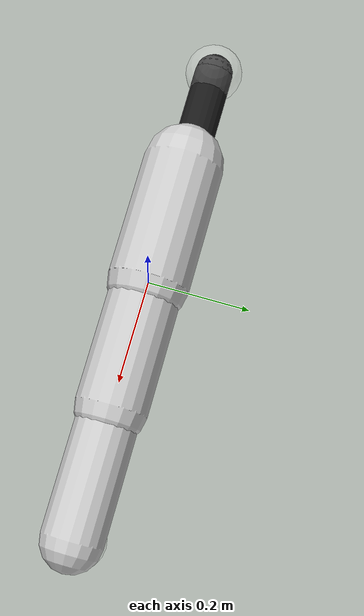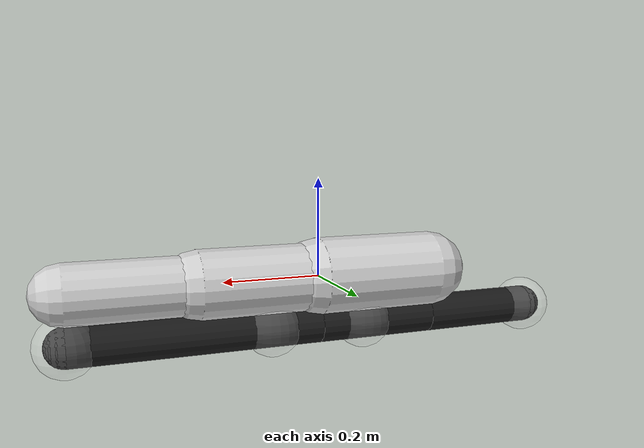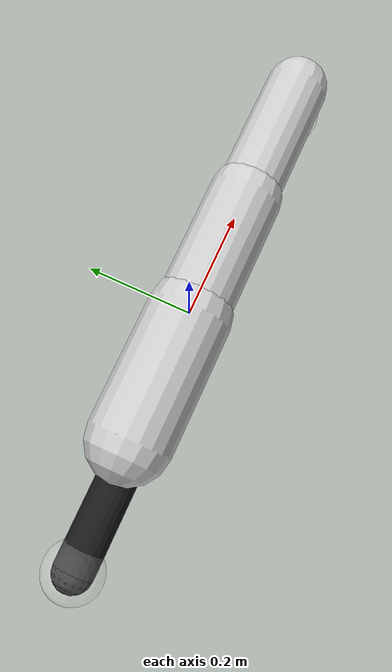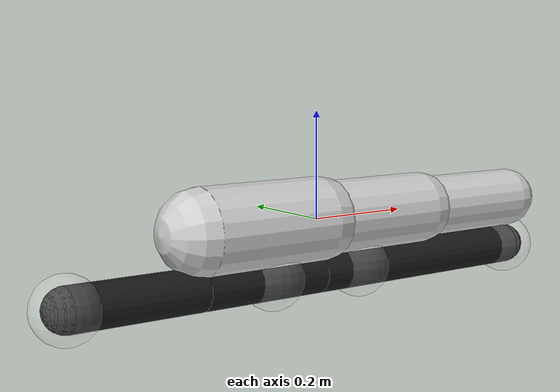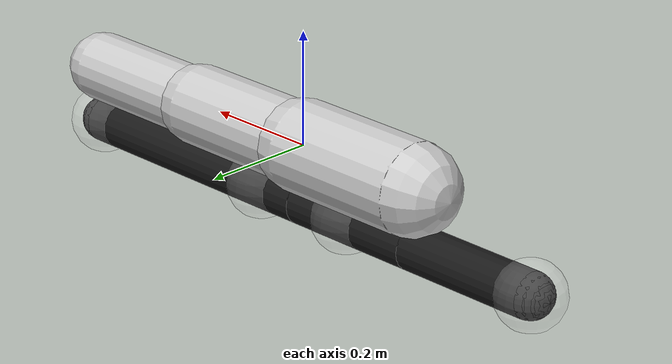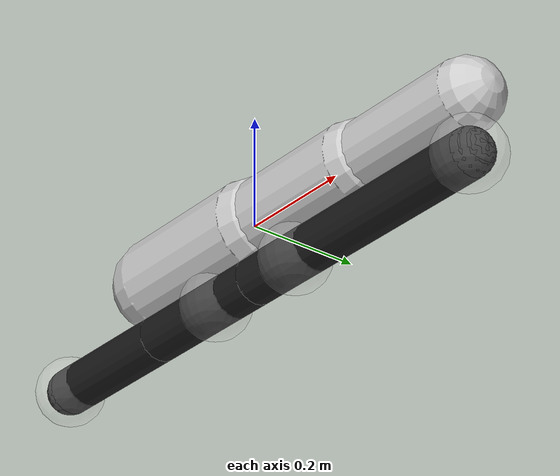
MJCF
<mujoco model="finger with orthotic">
    <option timestep="0.001" iterations="100" solver="Newton" tolerance="1e-8" integrator="implicitfast">
        <flag gravity="disable" contact="disable" energy="enable" />
    </option>

    <compiler angle="degree" />

    <visual>
        <rgba haze=".3 .3 .3 1" />
        <global offwidth="1920" offheight="1080" />
    </visual>

    <default>
        <joint type="hinge" pos="0 0 0" axis="0 0 1" stiffness="0.22194759146666668" damping="0.010179691733333333" />
        <site size="0.06" rgba="1 1 1 .1" />
        <geom type="capsule" size="0.01" rgba=".1 .1 .1 1" />
        <tendon width="0.01" rgba="0.141 0.345 0.437 1" />
    </default>

    <asset>
        <texture type="skybox" builtin="gradient" rgb1="1 1 1" rgb2="1 1 1" width="512" height="512" />
        <texture name="texplane" type="2d" builtin="checker" rgb1="1 1 1" rgb2="1 1 1" width="512" height="512" mark="cross" markrgb="1 1 1" />
        <material name="matplane" reflectance="0.3" texture="texplane" texrepeat="1 1" texuniform="true" />
    </asset>

    <worldbody>
        <light directional="true" diffuse=".8 .8 .8" specular=".2 .2 .2" pos="0 0 -5" dir="0 0 1" />
        <camera name="cam" pos="0 0 -2.8" xyaxes="1.000 0 0 0 -1.000 0" />

        <body name="finger" pos="0 0 0">
            <geom name="finger1" type="capsule" size="0.08" fromto="0 0 0  -.25 0 0" rgba="0.8 0.8 0.8 1" />
            <site name="sPIPL" pos="-.1 0 0" />

            <body pos="0 0 0">
                <geom name="finger2" type="capsule" size="0.07" fromto="0 0 0  .25 0 0" rgba="0.8 0.8 0.8 1" />
                <joint name="PIP" pos="0 0 0" stiffness="0" damping="0" />
                <site name="sPIPR" pos=".1 0 0" />

                <body pos=".25 0 0">
                    <geom name="finger3" type="capsule" size="0.06" fromto="0 0 0  .25 0 0" rgba="0.8 0.8 0.8 1" />
                </body>
            </body>
        </body>

        <body name="orthosis" pos="0 0 -.1">
            <geom name="beamB" type="capsule" size="0.04" fromto="0.0 0.0 0.0 -0.25 -3.061616997868383e-17 0.0" />
            <site name="hBAL" pos="-.1 0 0" size="0.06" />

            <body name="Bnext" pos="0 0 0">
                <joint name="hingeBA" type="hinge" pos="0 0 0" axis="0 0 1" stiffness="0.22194759146666668" damping="0.010179691733333333" />
                <site name="hBAR" pos=".1 0 0" size="0.06" />
                <geom name="beamA" type="capsule" size="0.04" fromto="0.0 0.0 0.0 0.5 0.0 0.0" />

                <body name="Anext" pos="0.5 0.0 0.0">
                    <joint name="hingeAL" type="hinge" pos="0 0 0" axis="0 0 1" stiffness="0.22194759146666668" damping="0.010179691733333333" />
                    <geom name="smallBodyAL" type="sphere" size="0.04" pos="0 0 0" />
                    <site name="hAL" pos="0 0 0" size="0.06" />
                </body>
            </body>

            <geom name="beamD" type="capsule" size="0.04" fromto="-0.25 -3.061616997868383e-17 0.0 -0.5 -6.123233995736766e-17 0.0" />
            <body name="Dnext" pos="-0.5 -6.123233995736766e-17 0.0">
                <joint name="hingeDL" type="hinge" pos="0 0 0" axis="0 0 -1" stiffness="0.22194759146666668" damping="0.010179691733333333" />
                <geom name="smallBodyDL" type="sphere" size="0.04" pos="0 0 0" />
                <site name="hDL" pos="0 0 0" size="0.06" />
            </body>
        </body>
    </worldbody>

    <equality>

        <weld site1="hBAR" site2="sPIPR" />

    </equality>

    <tendon>
        <spatial name="bendingTendon" limited="true" range="0.9 2.0" width="0.02" solimplimit="0 0.01 0.001 0.5 1" solreflimit="-0.04544049082985291 -0.0001549979691117748">
            <site site="hDL" />
            <site site="hAL" />
        </spatial>
        <spatial name="extensionTendon" limited="true" range="0 1.0" width="0.02" solimplimit="0 0.01 0.001 0.5 1" solreflimit="-610.5580104423766 -77.21538461337478">
            <site site="hDL" />
            <site site="hAL" />
        </spatial>
    </tendon>

    <actuator>
        <motor name="finger_bend" joint="PIP" ctrlrange="-10 10" gear="100" />
        <motor name="flexure_motor_BA" joint="hingeBA" gear="1" ctrlrange="0 0" />
        <motor name="flexure_motor_AL" joint="hingeAL" gear="1" ctrlrange="0 0" />
        <motor name="flexure_motor_DL" joint="hingeDL" gear="1" ctrlrange="0 0" />
        <motor name="tendon_nonlinear" tendon="bendingTendon" gear="1" ctrlrange="0 0" />
    </actuator>

    <sensor>
        <force name="finger_force" site="sPIPR" />
        <torque name="finger_torque" site="sPIPR" />
        <force name="tendon_force" site="hDL" />
    </sensor>
</mujoco>
